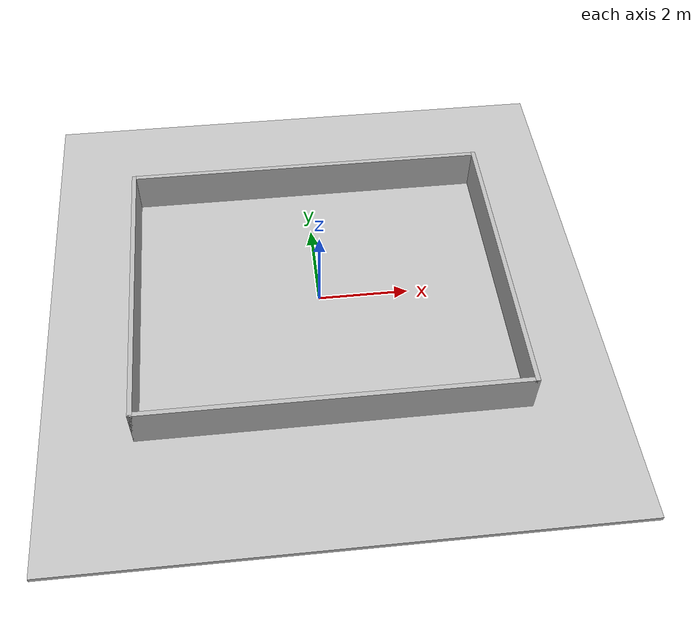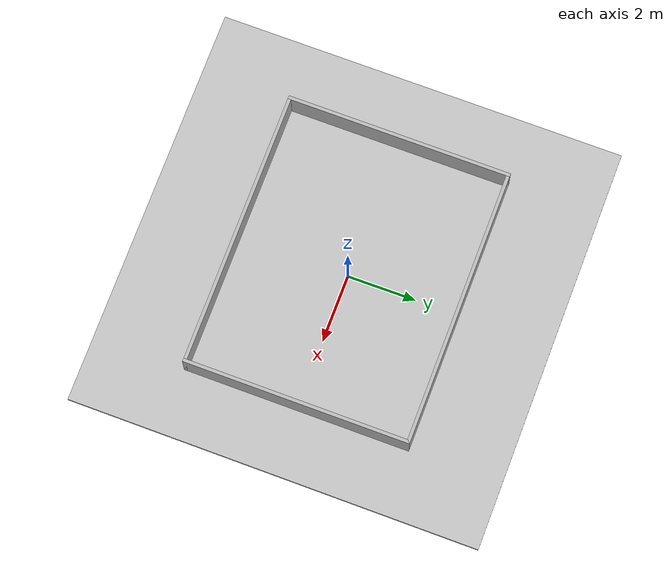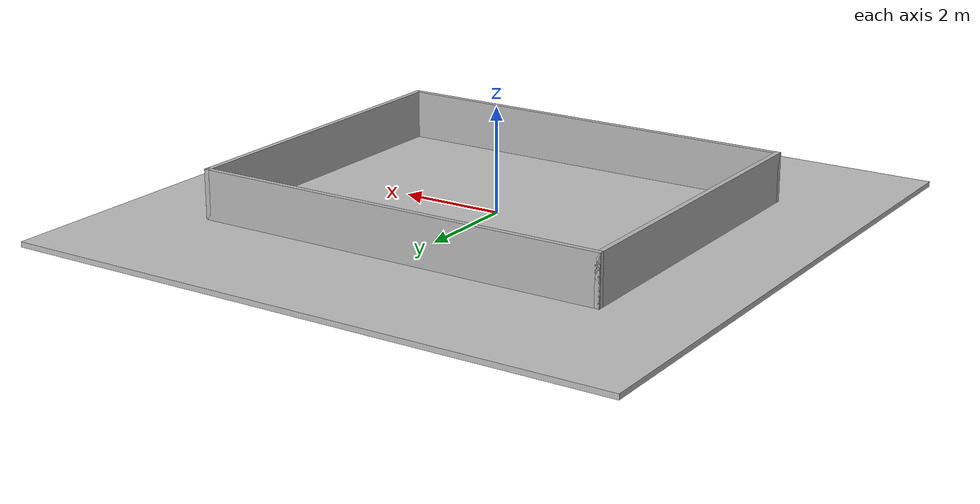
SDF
<?xml version="1.0" ?>
<!-- Empty M1-sized room used only for open-loop chassis checks. -->
<sdf version="1.9">
  <world name="imperative_m1_empty">
    <physics name="1ms" type="ignored">
      <max_step_size>0.001</max_step_size>
      <real_time_factor>1.0</real_time_factor>
    </physics>
    <plugin filename="ignition-gazebo-physics-system"
            name="ignition::gazebo::systems::Physics"/>
    <plugin filename="ignition-gazebo-user-commands-system"
            name="ignition::gazebo::systems::UserCommands"/>
    <plugin filename="ignition-gazebo-scene-broadcaster-system"
            name="ignition::gazebo::systems::SceneBroadcaster"/>
    <plugin filename="ignition-gazebo-sensors-system"
            name="ignition::gazebo::systems::Sensors">
      <render_engine>ogre</render_engine>
    </plugin>
    <light type="directional" name="sun">
      <pose>0 0 10 0 0 0</pose>
      <diffuse>0.8 0.8 0.8 1</diffuse>
      <direction>-0.5 0.1 -0.9</direction>
    </light>

    <model name="ground">
      <static>true</static>
      <link name="link">
        <collision name="collision">
          <geometry><box><size>12 12 0.1</size></box></geometry>
        </collision>
        <visual name="visual">
          <geometry><box><size>12 12 0.1</size></box></geometry>
          <material><diffuse>0.75 0.75 0.75 1</diffuse></material>
        </visual>
      </link>
    </model>

    <model name="wall_north">
      <pose>0 3.25 0.5 0 0 0</pose>
      <static>true</static>
      <link name="link">
        <collision name="collision"><geometry><box><size>8.2 0.1 1</size></box></geometry></collision>
        <visual name="visual"><geometry><box><size>8.2 0.1 1</size></box></geometry></visual>
      </link>
    </model>
    <model name="wall_south">
      <pose>0 -3.25 0.5 0 0 0</pose>
      <static>true</static>
      <link name="link">
        <collision name="collision"><geometry><box><size>8.2 0.1 1</size></box></geometry></collision>
        <visual name="visual"><geometry><box><size>8.2 0.1 1</size></box></geometry></visual>
      </link>
    </model>
    <model name="wall_east">
      <pose>4.05 0 0.5 0 0 0</pose>
      <static>true</static>
      <link name="link">
        <collision name="collision"><geometry><box><size>0.1 6.6 1</size></box></geometry></collision>
        <visual name="visual"><geometry><box><size>0.1 6.6 1</size></box></geometry></visual>
      </link>
    </model>
    <model name="wall_west">
      <pose>-4.05 0 0.5 0 0 0</pose>
      <static>true</static>
      <link name="link">
        <collision name="collision"><geometry><box><size>0.1 6.6 1</size></box></geometry></collision>
        <visual name="visual"><geometry><box><size>0.1 6.6 1</size></box></geometry></visual>
      </link>
    </model>
  </world>
</sdf>
